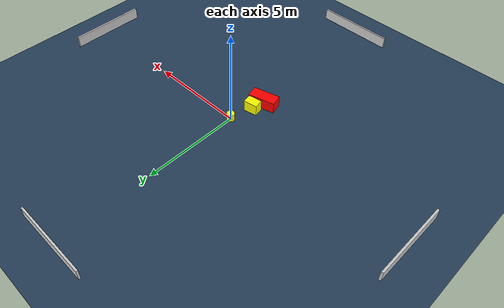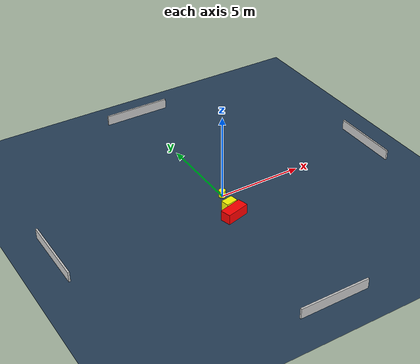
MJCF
<?xml version="1.0" ?>
<mujoco model="generated_environment">
  <option timestep="0.01" integrator="RK4" cone="elliptic"/>
  <default>
    <geom density="1"/>
  </default>
  <asset>
    <texture builtin="gradient" height="3072" name="skybox" rgb1="0.3 0.5 0.7" rgb2="0 0 0" type="skybox" width="512"/>
    <texture builtin="checker" height="300" name="groundplane" rgb1="0.2 0.3 0.4" rgb2="0.1 0.2 0.3" type="2d" width="300"/>
    <material name="groundplane" reflectance="0.2" texrepeat="5 5" texture="groundplane"/>
  </asset>
  <worldbody>
    <light dir="0 0 -1" directional="true" pos="0 0 1.5"/>
    <geom condim="3" friction="0.5 0.005 0.001" material="groundplane" name="floor" pos="0 0 0" size="0 0 0.05" type="plane"/>
    <body name="walls">
      <geom name="wall_1" condim="4" pos="-10.0 0.0 0.3" rgba="0.800000011920929 0.800000011920929 0.800000011920929 1.0" size="0.05 2.0 0.3" type="box"/>
      <geom name="wall_2" condim="4" pos="10.0 0.0 0.3" rgba="0.800000011920929 0.800000011920929 0.800000011920929 1.0" size="0.05 2.0 0.3" type="box"/>
      <geom name="wall_3" condim="4" pos="0.0 -10.0 0.3" rgba="0.800000011920929 0.800000011920929 0.800000011920929 1.0" size="2.0 0.05 0.3" type="box"/>
      <geom name="wall_4" condim="4" pos="0.0 10.0 0.3" rgba="0.800000011920929 0.800000011920929 0.800000011920929 1.0" size="2.0 0.05 0.3" type="box"/>
    </body>
    <body name="robot">
      <joint name="joint_x" type="slide" pos="0 0 0" axis="1 0 0"/>
      <joint name="joint_y" type="slide" pos="0 0 0" axis="0 1 0"/>
      <geom name="robot" type="cylinder" pos="0.0 0.0 0.2" size="0.2 0.2 0.0" mass="5.0" friction="1.0 0.005 0.0001" condim="4" rgba="1.0 1.0 0.0 1.0"/>
    </body>
    <body name="obstacle_1_movable">
      <geom name="obstacle_1_movable" condim="4" pos="-0.30682810509399916 -1.2133864620644192 0.3" euler="0 0 10.1304305662117" friction="0.0 0.005 0.001" rgba="1.0 1.0 0.0 1.0" size="0.35096019343206464 0.23760572035213878 0.3" type="box" mass="0.1"/>
      <joint type="free"/>
    </body>
    <body name="obstacle_2_static">
      <geom name="obstacle_2_static" condim="4" pos="-0.4319737319685903 -1.8882282573151534 0.3" euler="0 0 14.860584220759359" friction="0.0 0.005 0.001" rgba="1.0 0.0 0.0 1.0" size="0.6901642680515077 0.3068256082181186 0.3" type="box"/>
    </body>
  </worldbody>
  <actuator>
    <motor name="actuator_x" joint="joint_x" gear="1" ctrlrange="-1 1"/>
    <motor name="actuator_y" joint="joint_y" gear="1" ctrlrange="-1 1"/>
  </actuator>
</mujoco>
